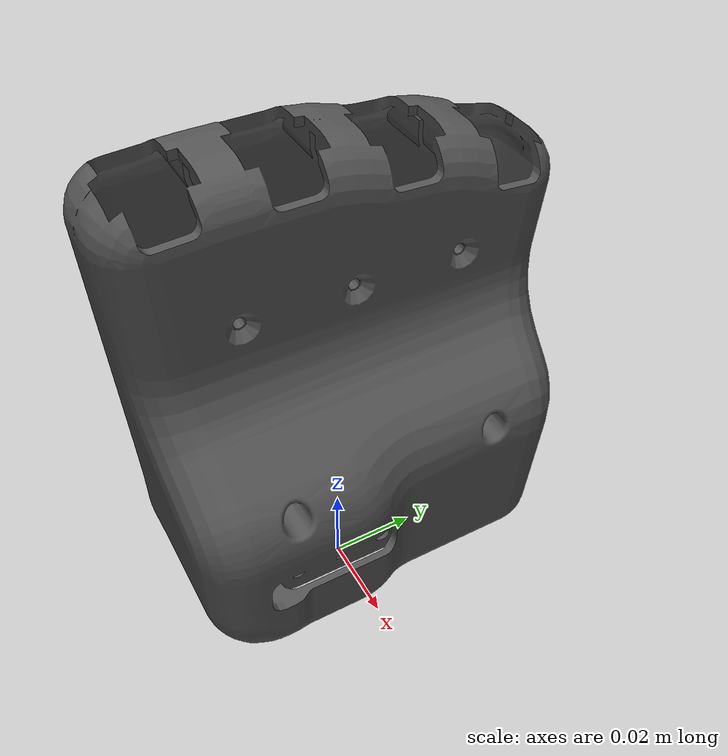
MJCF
<?xml version='1.0' encoding='utf-8'?>
<mujoco model="ROUGH_L_case_module">
  <asset>
    <material name="robot_mat" rgba="0.32 0.32 0.32 1" specular="0.10" shininess="0.15"/>
    <mesh name="case_module__mesh_1" file="ROUGH_L_case/meshes/Base_Link.STL" />
  </asset>
  <worldbody>
    <body name="fC_Base_Link" pos="0 0 0" quat="1 0 0 0">
      <inertial mass="0.10857" pos="-0.002751 0.002187 0.0541" fullinertia="0.00016131 9.291700000000001e-05 7.4793e-05 2.503e-07 3.6297e-06 2.5438e-06" />
      <geom type="mesh" mesh="case_module__mesh_1" pos="0 0 0" quat="1 0 0 0" contype="0" conaffinity="2" group="1" rgba="0.32 0.32 0.32 1" material="robot_mat" />
    </body>
  </worldbody>
</mujoco>
